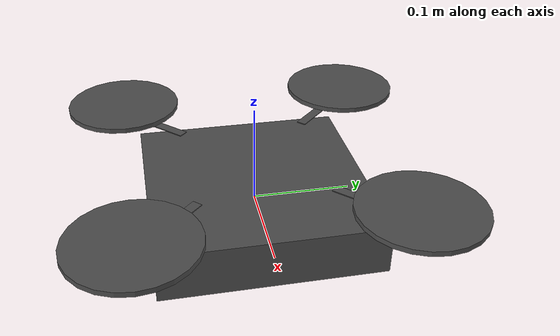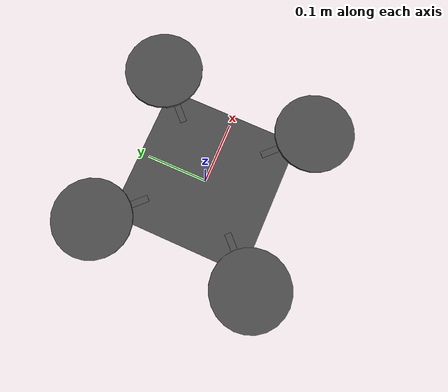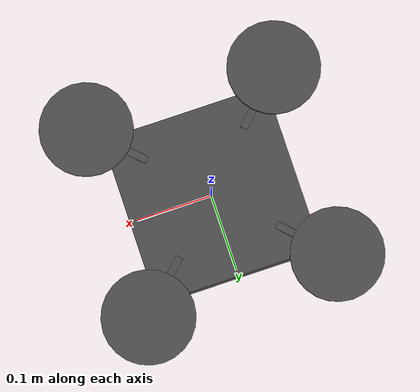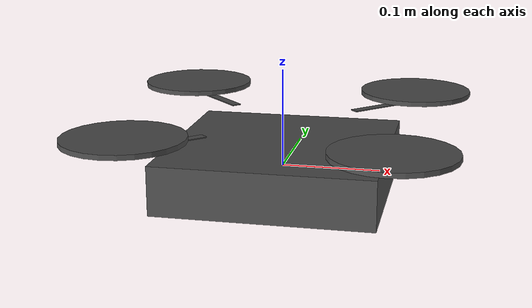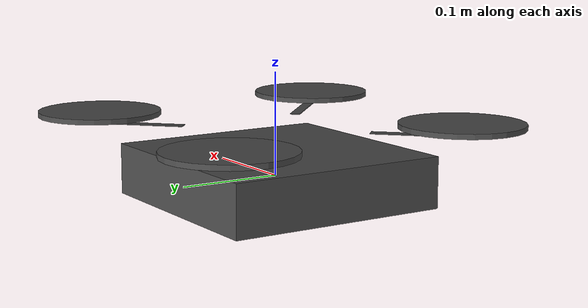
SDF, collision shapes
<sdf version='1.6'>
  <model name='flatquad'>
    <!-- Base Link -->
    <link name='base_link'>
      <pose>0 0 0 0 0 0</pose>
      <inertial>
        <pose>0 0 0 0 0 0</pose>
        <mass>1.5</mass>
        <inertia>
          <ixx>0.029125</ixx>
          <ixy>0</ixy>
          <ixz>0</ixz>
          <iyy>0.029125</iyy>
          <iyz>0</iyz>
          <izz>0.055225</izz>
        </inertia>
      </inertial>
      <collision name='base_link_inertia_collision'>
        <pose>0 0 0 0 0 0</pose>
        <geometry>
          <box>
            <scale>0.001 0.001 0.001</scale>
            <size>0.22 0.22 0.05</size>
          </box>
        </geometry>
        <surface>
          <contact>
            <ode>
              <min_depth>0.001</min_depth>
              <max_vel>0</max_vel>
            </ode>
          </contact>
          <friction>
            <ode/>
          </friction>
        </surface>
      </collision>
      <visual name='base_link_inertia_visual'>
        <pose>0 0 0 0 0 0</pose>
        <geometry>
          <mesh>
            <scale>0.001 0.001 0.001</scale>
            <uri>model://flatquad/meshes/quadrotor-frame-complete.stl</uri>
          </mesh>
        </geometry>
        <material>
          <script>
            <name>Gazebo/DarkGrey</name>
            <uri>file://media/materials/scripts/gazebo.material</uri>
          </script>
        </material>
      </visual>
      <gravity>1</gravity>
      <velocity_decay/>
    </link>
    <!-- IMU link -->
    <link name='/imu_link'>
      <pose>0 0 0 0 0 0</pose>
      <inertial>
        <pose>0 0 0 0 0 0</pose>
        <mass>0.015</mass>
        <inertia>
          <ixx>1e-05</ixx>
          <ixy>0</ixy>
          <ixz>0</ixz>
          <iyy>1e-05</iyy>
          <iyz>0</iyz>
          <izz>1e-05</izz>
        </inertia>
      </inertial>
    </link>
    <joint name='/imu_joint' type='revolute'>
      <child>/imu_link</child>
      <parent>base_link</parent>
      <axis>
        <xyz>1 0 0</xyz>
        <limit>
          <lower>0</lower>
          <upper>0</upper>
          <effort>0</effort>
          <velocity>0</velocity>
        </limit>
        <dynamics>
          <spring_reference>0</spring_reference>
          <spring_stiffness>0</spring_stiffness>
        </dynamics>
        <use_parent_model_frame>1</use_parent_model_frame>
      </axis>
    </joint>
    <!-- Arm 0 -->
    <link name='arm_0'>
      <pose>0.1 0.1 0.045 0 0 0.78</pose>
      <inertial>
        <pose>0 0 0 0 0 0</pose>
        <mass>0.005</mass>
        <inertia>
          <ixx>9.75e-07</ixx>
          <ixy>0</ixy>
          <ixz>0</ixz>
          <iyy>0.000273104</iyy>
          <iyz>0</iyz>
          <izz>0.000274004</izz>
        </inertia>
      </inertial>
      <collision name='arm_0_collision'>
        <pose>0 0 0 0 0 0</pose>
        <geometry>
          <box>
            <size>0.1 0.01 0.001</size>
          </box>
        </geometry>
        <surface>
          <contact>
            <ode/>
          </contact>
          <friction>
            <ode/>
          </friction>
        </surface>
      </collision>
      <visual name='arm_0_visual'>
        <pose>0 0 0 0 0 0</pose>
        <geometry>
          <mesh>
            <scale>0.001 0.001 0.001</scale>
            <uri>model://flatquad/meshes/arm-10in.stl</uri>
          </mesh>
        </geometry>
        <material>
          <script>
            <name>Gazebo/DarkGrey</name>
            <uri>file://media/materials/scripts/gazebo.material</uri>
          </script>
        </material>
      </visual>
      <gravity>1</gravity>
      <velocity_decay/>
    </link>
    <joint name='arm_0_joint' type='fixed'>
      <child>arm_0</child>
      <parent>base_link</parent>
    </joint>
    <!-- Arm 1 -->
    <link name='arm_1'>
      <pose>0.1 -0.1 0.045 0 0 -0.78</pose>
      <inertial>
        <pose>0 0 0 0 0 0</pose>
        <mass>0.005</mass>
        <inertia>
          <ixx>9.75e-07</ixx>
          <ixy>0</ixy>
          <ixz>0</ixz>
          <iyy>0.000273104</iyy>
          <iyz>0</iyz>
          <izz>0.000274004</izz>
        </inertia>
      </inertial>
      <collision name='arm_1_collision'>
        <pose>0 0 0 0 0 0</pose>
        <geometry>
          <box>
            <size>0.1 0.01 0.001</size>
          </box>
        </geometry>
        <surface>
          <contact>
            <ode/>
          </contact>
          <friction>
            <ode/>
          </friction>
        </surface>
      </collision>
      <visual name='arm_1_visual'>
        <pose>0 0 0 0 0 0</pose>
        <geometry>
          <mesh>
            <scale>0.001 0.001 0.001</scale>
            <uri>model://flatquad/meshes/arm-10in.stl</uri>
          </mesh>
        </geometry>
        <material>
          <script>
            <name>Gazebo/DarkGrey</name>
            <uri>file://media/materials/scripts/gazebo.material</uri>
          </script>
        </material>
      </visual>
      <gravity>1</gravity>
      <velocity_decay/>
    </link>
    <joint name='arm_1_joint' type='fixed'>
      <child>arm_1</child>
      <parent>base_link</parent>
    </joint>
    <!-- Arm 2 -->
    <link name='arm_2'>
      <pose>-0.1 -0.1 0.045 0 0 -2.356</pose>
      <inertial>
        <pose>0 0 0 0 0 0</pose>
        <mass>0.005</mass>
        <inertia>
          <ixx>9.75e-07</ixx>
          <ixy>0</ixy>
          <ixz>0</ixz>
          <iyy>0.000273104</iyy>
          <iyz>0</iyz>
          <izz>0.000274004</izz>
        </inertia>
      </inertial>
      <collision name='arm_2_collision'>
        <pose>0 0 0 0 0 0</pose>
        <geometry>
          <box>
            <size>0.1 0.01 0.001</size>
          </box>
        </geometry>
        <surface>
          <contact>
            <ode/>
          </contact>
          <friction>
            <ode/>
          </friction>
        </surface>
      </collision>
      <visual name='arm_2_visual'>
        <pose>0 0 0 0 0 0</pose>
        <geometry>
          <mesh>
            <scale>0.001 0.001 0.001</scale>
            <uri>model://flatquad/meshes/arm-10in.stl</uri>
          </mesh>
        </geometry>
        <material>
          <script>
            <name>Gazebo/DarkGrey</name>
            <uri>file://media/materials/scripts/gazebo.material</uri>
          </script>
        </material>
      </visual>
      <gravity>1</gravity>
      <velocity_decay/>
    </link>
    <joint name='arm_2_joint' type='fixed'>
      <child>arm_2</child>
      <parent>base_link</parent>
    </joint>
    <!-- Arm 3 -->
    <link name='arm_3'>
      <pose>-0.1 0.1 0.045 0 0 2.356</pose>
      <inertial>
        <pose>0 0 0 0 0 0</pose>
        <mass>0.005</mass>
        <inertia>
          <ixx>9.75e-07</ixx>
          <ixy>0</ixy>
          <ixz>0</ixz>
          <iyy>0.000273104</iyy>
          <iyz>0</iyz>
          <izz>0.000274004</izz>
        </inertia>
      </inertial>
      <collision name='arm_3_collision'>
        <pose>0 0 0 0 0 0</pose>
        <geometry>
          <box>
            <size>0.1 0.01 0.001</size>
          </box>
        </geometry>
        <surface>
          <contact>
            <ode/>
          </contact>
          <friction>
            <ode/>
          </friction>
        </surface>
      </collision>
      <visual name='arm_3_visual'>
        <pose>0 0 0 0 0 0</pose>
        <geometry>
          <mesh>
            <scale>0.001 0.001 0.001</scale>
            <uri>model://flatquad/meshes/arm-10in.stl</uri>
          </mesh>
        </geometry>
        <material>
          <script>
            <name>Gazebo/DarkGrey</name>
            <uri>file://media/materials/scripts/gazebo.material</uri>
          </script>
        </material>
      </visual>
      <gravity>1</gravity>
      <velocity_decay/>
    </link>
    <joint name='arm_3_joint' type='fixed'>
      <child>arm_3</child>
      <parent>base_link</parent>
    </joint>
    <!-- Rotor -->
    <link name='rotor_0'>
      <pose>0.125 0.125 0.055 0 0 0</pose>
      <inertial>
        <pose>0 0 0 0 0 0</pose>
        <mass>0.005</mass>
        <inertia>
          <ixx>9.75e-07</ixx>
          <ixy>0</ixy>
          <ixz>0</ixz>
          <iyy>0.000273104</iyy>
          <iyz>0</iyz>
          <izz>0.000274004</izz>
        </inertia>
      </inertial>
      <collision name='rotor_0_collision'>
        <pose>0 0 0 0 0 0</pose>
        <geometry>
          <cylinder>
            <length>0.005</length>
            <radius>0.06</radius>
          </cylinder>
        </geometry>
        <surface>
          <contact>
            <ode/>
          </contact>
          <friction>
            <ode/>
          </friction>
        </surface>
      </collision>
      <visual name='rotor_0_visual'>
        <pose>0 0 0 0 0 0</pose>
        <geometry>
          <mesh>
            <scale>0.5 0.5 0.5</scale>
            <uri>model://flatquad/meshes/flatquad_prop_ccw.dae</uri>
          </mesh>
        </geometry>
        <material>
          <script>
            <name>Gazebo/DarkGrey</name>
            <uri>file://media/materials/scripts/gazebo.material</uri>
          </script>
        </material>
      </visual>
      <gravity>1</gravity>
      <velocity_decay/>
    </link>
    <joint name='rotor_0_joint' type='revolute'>
      <child>rotor_0</child>
      <parent>arm_0</parent>
      <axis>
        <xyz>0 0 1</xyz>
        <limit>
          <lower>-1e+16</lower>
          <upper>1e+16</upper>
        </limit>
        <dynamics>
          <spring_reference>0</spring_reference>
          <spring_stiffness>0</spring_stiffness>
        </dynamics>
        <use_parent_model_frame>1</use_parent_model_frame>
      </axis>
    </joint>
    <link name='rotor_1'>
      <pose>0.125 -0.125 0.055 0 0 0</pose>
      <inertial>
        <pose>0 0 0 0 0 0</pose>
        <mass>0.005</mass>
        <inertia>
          <ixx>9.75e-07</ixx>
          <ixy>0</ixy>
          <ixz>0</ixz>
          <iyy>0.000273104</iyy>
          <iyz>0</iyz>
          <izz>0.000274004</izz>
        </inertia>
      </inertial>
      <collision name='rotor_1_collision'>
        <pose>0 0 0 0 0 0</pose>
        <geometry>
          <cylinder>
            <length>0.005</length>
            <radius>0.06</radius>
          </cylinder>
        </geometry>
        <surface>
          <contact>
            <ode/>
          </contact>
          <friction>
            <ode/>
          </friction>
        </surface>
      </collision>
      <visual name='rotor_1_visual'>
        <pose>0 0 0 0 0 0</pose>
        <geometry>
          <mesh>
            <scale>0.5 0.5 0.5</scale>
            <uri>model://flatquad/meshes/flatquad_prop_ccw.dae</uri>
          </mesh>
        </geometry>
        <material>
          <script>
            <name>Gazebo/DarkGrey</name>
            <uri>file://media/materials/scripts/gazebo.material</uri>
          </script>
        </material>
      </visual>
      <gravity>1</gravity>
      <velocity_decay/>
    </link>
    <joint name='rotor_1_joint' type='revolute'>
      <child>rotor_1</child>
      <parent>arm_1</parent>
      <axis>
        <xyz>0 0 1</xyz>
        <limit>
          <lower>-1e+16</lower>
          <upper>1e+16</upper>
        </limit>
        <dynamics>
          <spring_reference>0</spring_reference>
          <spring_stiffness>0</spring_stiffness>
        </dynamics>
        <use_parent_model_frame>1</use_parent_model_frame>
      </axis>
    </joint>
    <link name='rotor_2'>
      <pose>-0.125 -0.125 0.055 0 0 0</pose>
      <inertial>
        <pose>0 0 0 0 0 0</pose>
        <mass>0.005</mass>
        <inertia>
          <ixx>9.75e-07</ixx>
          <ixy>0</ixy>
          <ixz>0</ixz>
          <iyy>0.000273104</iyy>
          <iyz>0</iyz>
          <izz>0.000274004</izz>
        </inertia>
      </inertial>
      <collision name='rotor_2_collision'>
        <pose>0 0 0 0 0 0</pose>
        <geometry>
          <cylinder>
            <length>0.005</length>
            <radius>0.06</radius>
          </cylinder>
        </geometry>
        <surface>
          <contact>
            <ode/>
          </contact>
          <friction>
            <ode/>
          </friction>
        </surface>
      </collision>
      <visual name='rotor_2_visual'>
        <pose>0 0 0 0 0 0</pose>
        <geometry>
          <mesh>
            <scale>0.5 0.5 0.5</scale>
            <uri>model://flatquad/meshes/flatquad_prop_cw.dae</uri>
          </mesh>
        </geometry>
        <material>
          <script>
            <name>Gazebo/DarkGrey</name>
            <uri>file://media/materials/scripts/gazebo.material</uri>
          </script>
        </material>
      </visual>
      <gravity>1</gravity>
      <velocity_decay/>
    </link>
    <joint name='rotor_2_joint' type='revolute'>
      <child>rotor_2</child>
      <parent>arm_2</parent>
      <axis>
        <xyz>0 0 1</xyz>
        <limit>
          <lower>-1e+16</lower>
          <upper>1e+16</upper>
        </limit>
        <dynamics>
          <spring_reference>0</spring_reference>
          <spring_stiffness>0</spring_stiffness>
        </dynamics>
        <use_parent_model_frame>1</use_parent_model_frame>
      </axis>
    </joint>
    <link name='rotor_3'>
      <pose>-0.125 0.125 0.055 0 0 0</pose>
      <inertial>
        <pose>0 0 0 0 0 0</pose>
        <mass>0.005</mass>
        <inertia>
          <ixx>9.75e-07</ixx>
          <ixy>0</ixy>
          <ixz>0</ixz>
          <iyy>0.000273104</iyy>
          <iyz>0</iyz>
          <izz>0.000274004</izz>
        </inertia>
      </inertial>
      <collision name='rotor_3_collision'>
        <pose>0 0 0 0 0 0</pose>
        <geometry>
          <cylinder>
            <length>0.005</length>
            <radius>0.06</radius>
          </cylinder>
        </geometry>
        <surface>
          <contact>
            <ode/>
          </contact>
          <friction>
            <ode/>
          </friction>
        </surface>
      </collision>
      <visual name='rotor_3_visual'>
        <pose>0 0 0 0 0 0</pose>
        <geometry>
          <mesh>
            <scale>0.5 0.5 0.5</scale>
            <uri>model://flatquad/meshes/flatquad_prop_cw.dae</uri>
          </mesh>
        </geometry>
        <material>
          <script>
            <name>Gazebo/DarkGrey</name>
            <uri>file://media/materials/scripts/gazebo.material</uri>
          </script>
        </material>
      </visual>
      <gravity>1</gravity>
      <velocity_decay/>
    </link>
    <joint name='rotor_3_joint' type='revolute'>
      <child>rotor_3</child>
      <parent>arm_3</parent>
      <axis>
        <xyz>0 0 1</xyz>
        <limit>
          <lower>-1e+16</lower>
          <upper>1e+16</upper>
        </limit>
        <dynamics>
          <spring_reference>0</spring_reference>
          <spring_stiffness>0</spring_stiffness>
        </dynamics>
        <use_parent_model_frame>1</use_parent_model_frame>
      </axis>
    </joint>
    <plugin name='rosbag' filename='libgazebo_multirotor_base_plugin.so'>
      <robotNamespace/>
      <linkName>base_link</linkName>
      <rotorVelocitySlowdownSim>10</rotorVelocitySlowdownSim>
    </plugin>
    <plugin name='front_right_motor_model' filename='libgazebo_motor_model.so'>
      <robotNamespace/>
      <jointName>rotor_0_joint</jointName>
      <linkName>rotor_0</linkName>
      <turningDirection>ccw</turningDirection>
      <timeConstantUp>0.0125</timeConstantUp>
      <timeConstantDown>0.025</timeConstantDown>
      <maxRotVelocity>1100</maxRotVelocity>
      <motorConstant>5.84e-06</motorConstant>
      <momentConstant>0.06</momentConstant>
      <commandSubTopic>/gazebo/command/motor_speed</commandSubTopic>
      <motorNumber>0</motorNumber>
      <rotorDragCoefficient>0.000175</rotorDragCoefficient>
      <rollingMomentCoefficient>1e-06</rollingMomentCoefficient>
      <motorSpeedPubTopic>/motor_speed/0</motorSpeedPubTopic>
      <rotorVelocitySlowdownSim>10</rotorVelocitySlowdownSim>
    </plugin>
    <plugin name='back_left_motor_model' filename='libgazebo_motor_model.so'>
      <robotNamespace/>
      <jointName>rotor_1_joint</jointName>
      <linkName>rotor_1</linkName>
      <turningDirection>ccw</turningDirection>
      <timeConstantUp>0.0125</timeConstantUp>
      <timeConstantDown>0.025</timeConstantDown>
      <maxRotVelocity>1100</maxRotVelocity>
      <motorConstant>5.84e-06</motorConstant>
      <momentConstant>0.06</momentConstant>
      <commandSubTopic>/gazebo/command/motor_speed</commandSubTopic>
      <motorNumber>1</motorNumber>
      <rotorDragCoefficient>0.000175</rotorDragCoefficient>
      <rollingMomentCoefficient>1e-06</rollingMomentCoefficient>
      <motorSpeedPubTopic>/motor_speed/1</motorSpeedPubTopic>
      <rotorVelocitySlowdownSim>10</rotorVelocitySlowdownSim>
    </plugin>
    <plugin name='front_left_motor_model' filename='libgazebo_motor_model.so'>
      <robotNamespace/>
      <jointName>rotor_2_joint</jointName>
      <linkName>rotor_2</linkName>
      <turningDirection>cw</turningDirection>
      <timeConstantUp>0.0125</timeConstantUp>
      <timeConstantDown>0.025</timeConstantDown>
      <maxRotVelocity>1100</maxRotVelocity>
      <motorConstant>5.84e-06</motorConstant>
      <momentConstant>0.06</momentConstant>
      <commandSubTopic>/gazebo/command/motor_speed</commandSubTopic>
      <motorNumber>2</motorNumber>
      <rotorDragCoefficient>0.000175</rotorDragCoefficient>
      <rollingMomentCoefficient>1e-06</rollingMomentCoefficient>
      <motorSpeedPubTopic>/motor_speed/2</motorSpeedPubTopic>
      <rotorVelocitySlowdownSim>10</rotorVelocitySlowdownSim>
    </plugin>
    <plugin name='back_right_motor_model' filename='libgazebo_motor_model.so'>
      <robotNamespace/>
      <jointName>rotor_3_joint</jointName>
      <linkName>rotor_3</linkName>
      <turningDirection>cw</turningDirection>
      <timeConstantUp>0.0125</timeConstantUp>
      <timeConstantDown>0.025</timeConstantDown>
      <maxRotVelocity>1100</maxRotVelocity>
      <motorConstant>5.84e-06</motorConstant>
      <momentConstant>0.06</momentConstant>
      <commandSubTopic>/gazebo/command/motor_speed</commandSubTopic>
      <motorNumber>3</motorNumber>
      <rotorDragCoefficient>0.000175</rotorDragCoefficient>
      <rollingMomentCoefficient>1e-06</rollingMomentCoefficient>
      <motorSpeedPubTopic>/motor_speed/3</motorSpeedPubTopic>
      <rotorVelocitySlowdownSim>10</rotorVelocitySlowdownSim>
    </plugin>
    <model name='gps0'>
      <link name='link'>
        <pose>0 0 0 0 0 0</pose>
        <inertial>
          <pose>0 0 0 0 0 0</pose>
          <mass>0.01</mass>
          <inertia>
            <ixx>2.1733e-06</ixx>
            <ixy>0</ixy>
            <ixz>0</ixz>
            <iyy>2.1733e-06</iyy>
            <iyz>0</iyz>
            <izz>1.8e-07</izz>
          </inertia>
        </inertial>
        <visual name='visual'>
          <geometry>
            <cylinder>
              <radius>0.01</radius>
              <length>0.002</length>
            </cylinder>
          </geometry>
          <material>
            <script>
              <name>Gazebo/Black</name>
              <uri>__default__</uri>
            </script>
          </material>
        </visual>
        <sensor name='gps' type='gps'>
          <pose>0 0 0 0 0 0</pose>
          <plugin name='gps_plugin' filename='libgazebo_gps_plugin.so'>
            <robotNamespace/>
            <gpsNoise>1</gpsNoise>
            <gpsXYRandomWalk>2.0</gpsXYRandomWalk>
            <gpsZRandomWalk>4.0</gpsZRandomWalk>
            <gpsXYNoiseDensity>0.0002</gpsXYNoiseDensity>
            <gpsZNoiseDensity>0.0004</gpsZNoiseDensity>
            <gpsVXYNoiseDensity>0.2</gpsVXYNoiseDensity>
            <gpsVZNoiseDensity>0.4</gpsVZNoiseDensity>
          </plugin>
        </sensor>
      </link>
    </model>
    <joint name='gps0_joint' type='fixed'>
      <parent>base_link</parent>
      <child>gps0::link</child>
    </joint>
    <plugin name='groundtruth_plugin' filename='libgazebo_groundtruth_plugin.so'>
      <robotNamespace/>
    </plugin>
    <plugin name='magnetometer_plugin' filename='libgazebo_magnetometer_plugin.so'>
      <robotNamespace/>
      <pubRate>100</pubRate>
      <noiseDensity>0.0004</noiseDensity>
      <randomWalk>6.4e-06</randomWalk>
      <biasCorrelationTime>600</biasCorrelationTime>
      <magTopic>/mag</magTopic>
    </plugin>
    <plugin name='barometer_plugin' filename='libgazebo_barometer_plugin.so'>
      <robotNamespace/>
      <pubRate>50</pubRate>
      <baroTopic>/baro</baroTopic>
      <baroDriftPaPerSec>0</baroDriftPaPerSec>
    </plugin>
    <plugin name='mavlink_interface' filename='libgazebo_mavlink_interface.so'>
      <robotNamespace/>
      <imuSubTopic>/imu</imuSubTopic>
      <magSubTopic>/mag</magSubTopic>
      <baroSubTopic>/baro</baroSubTopic>
      <mavlink_addr>INADDR_ANY</mavlink_addr>
      <mavlink_tcp_port>4560</mavlink_tcp_port>
      <mavlink_udp_port>14560</mavlink_udp_port>
      <serialEnabled>1</serialEnabled>
      <serialDevice>/dev/ttyACM0</serialDevice>
      <baudRate>921600</baudRate>
      <qgc_addr>INADDR_ANY</qgc_addr>
      <qgc_udp_port>14550</qgc_udp_port>
      <sdk_addr>INADDR_ANY</sdk_addr>
      <sdk_udp_port>14540</sdk_udp_port>
      <hil_mode>1</hil_mode>
      <hil_state_level>0</hil_state_level>
      <send_vision_estimation>0</send_vision_estimation>
      <send_odometry>1</send_odometry>
      <enable_lockstep>0</enable_lockstep>
      <use_tcp>0</use_tcp>
      <motorSpeedCommandPubTopic>/gazebo/command/motor_speed</motorSpeedCommandPubTopic>
      <control_channels>
        <channel name='rotor1'>
          <input_index>0</input_index>
          <input_offset>0</input_offset>
          <input_scaling>1000</input_scaling>
          <zero_position_disarmed>0</zero_position_disarmed>
          <zero_position_armed>100</zero_position_armed>
          <joint_control_type>velocity</joint_control_type>
        </channel>
        <channel name='rotor2'>
          <input_index>1</input_index>
          <input_offset>0</input_offset>
          <input_scaling>1000</input_scaling>
          <zero_position_disarmed>0</zero_position_disarmed>
          <zero_position_armed>100</zero_position_armed>
          <joint_control_type>velocity</joint_control_type>
        </channel>
        <channel name='rotor3'>
          <input_index>2</input_index>
          <input_offset>0</input_offset>
          <input_scaling>1000</input_scaling>
          <zero_position_disarmed>0</zero_position_disarmed>
          <zero_position_armed>100</zero_position_armed>
          <joint_control_type>velocity</joint_control_type>
        </channel>
        <channel name='rotor4'>
          <input_index>3</input_index>
          <input_offset>0</input_offset>
          <input_scaling>1000</input_scaling>
          <zero_position_disarmed>0</zero_position_disarmed>
          <zero_position_armed>100</zero_position_armed>
          <joint_control_type>velocity</joint_control_type>
        </channel>
        <channel name='rotor5'>
          <input_index>4</input_index>
          <input_offset>1</input_offset>
          <input_scaling>324.6</input_scaling>
          <zero_position_disarmed>0</zero_position_disarmed>
          <zero_position_armed>0</zero_position_armed>
          <joint_control_type>velocity</joint_control_type>
          <joint_control_pid>
            <p>0.1</p>
            <i>0</i>
            <d>0</d>
            <iMax>0.0</iMax>
            <iMin>0.0</iMin>
            <cmdMax>2</cmdMax>
            <cmdMin>-2</cmdMin>
          </joint_control_pid>
          <joint_name>zephyr_delta_wing::propeller_joint</joint_name>
        </channel>
        <channel name='rotor6'>
          <input_index>5</input_index>
          <input_offset>0</input_offset>
          <input_scaling>0.524</input_scaling>
          <zero_position_disarmed>0</zero_position_disarmed>
          <zero_position_armed>0</zero_position_armed>
          <joint_control_type>position</joint_control_type>
          <joint_name>zephyr_delta_wing::flap_left_joint</joint_name>
          <joint_control_pid>
            <p>10.0</p>
            <i>0</i>
            <d>0</d>
            <iMax>0</iMax>
            <iMin>0</iMin>
            <cmdMax>20</cmdMax>
            <cmdMin>-20</cmdMin>
          </joint_control_pid>
        </channel>
        <channel name='rotor7'>
          <input_index>6</input_index>
          <input_offset>0</input_offset>
          <input_scaling>0.524</input_scaling>
          <zero_position_disarmed>0</zero_position_disarmed>
          <zero_position_armed>0</zero_position_armed>
          <joint_control_type>position</joint_control_type>
          <joint_name>zephyr_delta_wing::flap_right_joint</joint_name>
          <joint_control_pid>
            <p>10.0</p>
            <i>0</i>
            <d>0</d>
            <iMax>0</iMax>
            <iMin>0</iMin>
            <cmdMax>20</cmdMax>
            <cmdMin>-20</cmdMin>
          </joint_control_pid>
        </channel>
        <channel name='rotor8'>
          <input_index>7</input_index>
          <input_offset>0</input_offset>
          <input_scaling>0.524</input_scaling>
          <zero_position_disarmed>0</zero_position_disarmed>
          <zero_position_armed>0</zero_position_armed>
          <joint_control_type>position</joint_control_type>
        </channel>
      </control_channels>
    </plugin>
    <static>0</static>
    <plugin name='rotors_gazebo_imu_plugin' filename='libgazebo_imu_plugin.so'>
      <robotNamespace/>
      <linkName>/imu_link</linkName>
      <imuTopic>/imu</imuTopic>
      <gyroscopeNoiseDensity>0.00018665</gyroscopeNoiseDensity>
      <gyroscopeRandomWalk>3.8785e-05</gyroscopeRandomWalk>
      <gyroscopeBiasCorrelationTime>1000.0</gyroscopeBiasCorrelationTime>
      <gyroscopeTurnOnBiasSigma>0.0087</gyroscopeTurnOnBiasSigma>
      <accelerometerNoiseDensity>0.00186</accelerometerNoiseDensity>
      <accelerometerRandomWalk>0.006</accelerometerRandomWalk>
      <accelerometerBiasCorrelationTime>300.0</accelerometerBiasCorrelationTime>
      <accelerometerTurnOnBiasSigma>0.196</accelerometerTurnOnBiasSigma>
    </plugin>
  </model>
</sdf>
